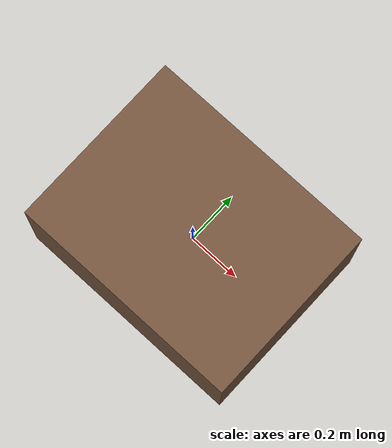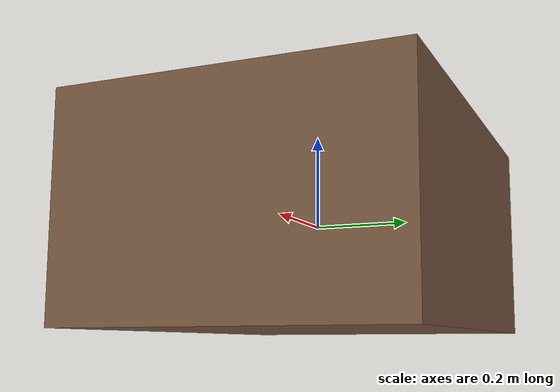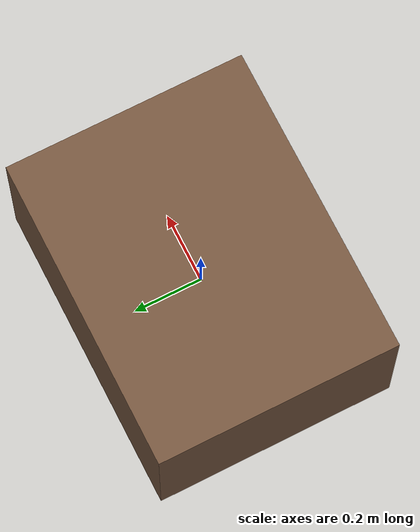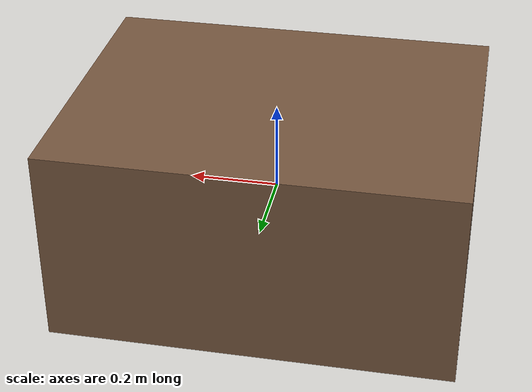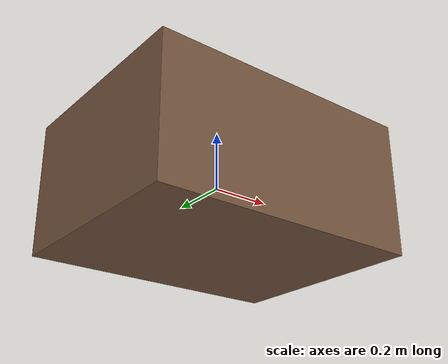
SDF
<?xml version="1.0"?>
<sdf version="1.7">
  <model name="demo_table">
    <static>true</static>
    <link name="table_link">
      <collision name="table_collision">
        <geometry>
          <box>
            <size>0.9 0.7 0.45</size>
          </box>
        </geometry>
      </collision>
      <visual name="table_visual">
        <geometry>
          <box>
            <size>0.9 0.7 0.45</size>
          </box>
        </geometry>
        <material>
          <ambient>0.45 0.33 0.24 1</ambient>
          <diffuse>0.45 0.33 0.24 1</diffuse>
        </material>
      </visual>
    </link>
  </model>
</sdf>
